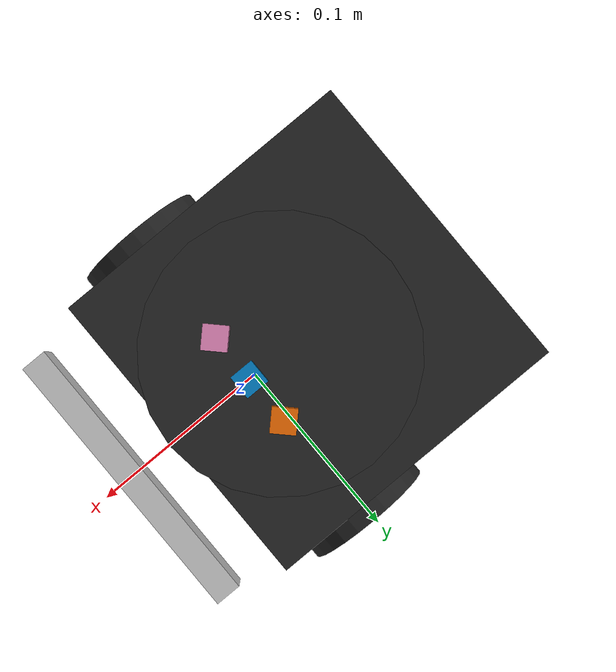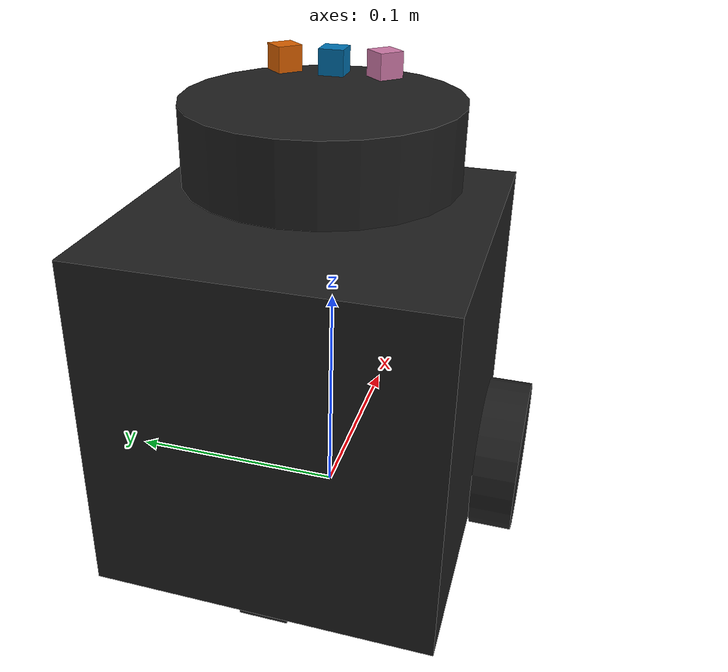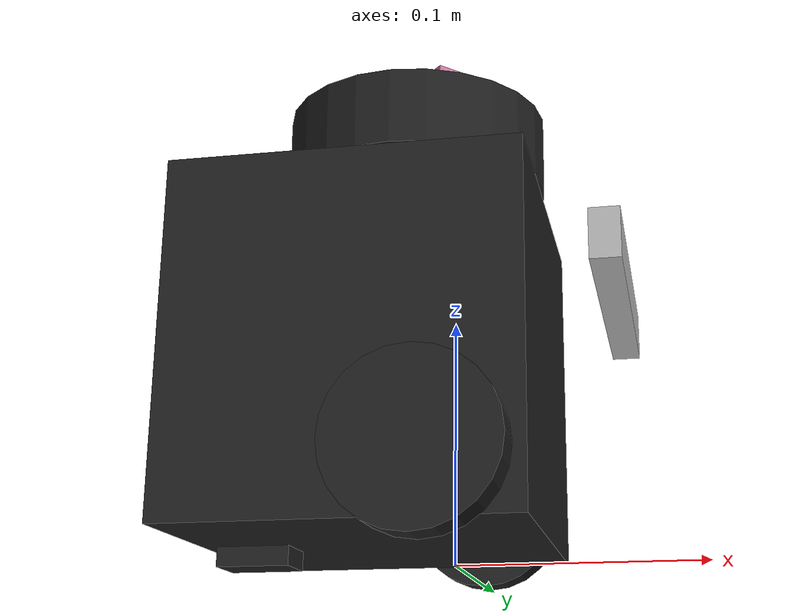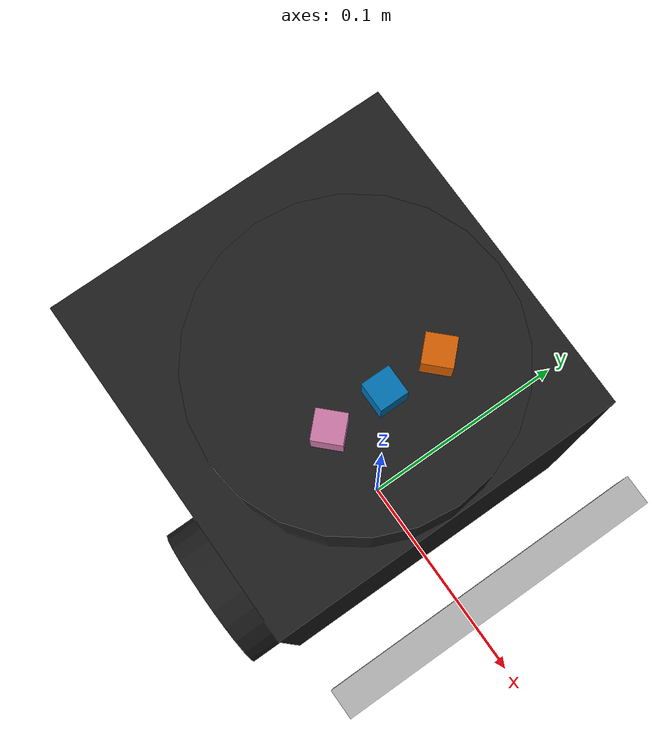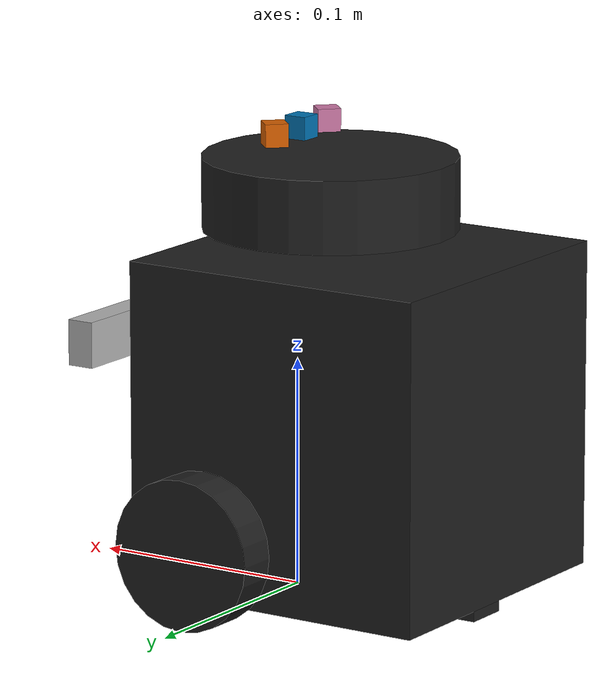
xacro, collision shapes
<?xml version="1.0"?>

<robot name="iris" xmlns:xacro="http://ros.org/wiki/xacro">
  <!-- Properties that can be assigned at build time as arguments.
  Is there a reason not to make all properties arguments?
  -->

  <!-- macros for gazebo plugins, sensors -->
  <xacro:include filename="$(find turtlebot3_description)/urdf/turtlebot3_burger.urdf.xacro" />

  <xacro:include filename="$(find turtlebot3_ultrasonic_demo_description)/urdf/ultrasonic_sensor.urdf.xacro" />

  <xacro:ultrasonic_sensor name="ultranic_sensor1"/>
  <xacro:ultrasonic_sensor name="ultranic_sensor2"/>
  <xacro:ultrasonic_sensor name="ultranic_sensor3"/>

  <joint name="ultrasonic_joint1" type="fixed">
    <origin xyz="0.03 0 0.02" rpy="0 0 0" />
    <parent link="base_scan" />
    <child link="ultranic_sensor1" />
  </joint>

  <joint name="ultrasonic_joint2" type="fixed">
    <origin xyz="0.03 0.02 0.02" rpy="0 0 0.7854" />
    <parent link="base_scan" />
    <child link="ultranic_sensor2" />
  </joint>

  <joint name="ultrasonic_joint3" type="fixed">
    <origin xyz="0.03 -0.02 0.02" rpy="0 0 -0.7854" />
    <parent link="base_scan" />
    <child link="ultranic_sensor3" />
  </joint>

</robot>

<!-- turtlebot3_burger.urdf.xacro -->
<robot name="turtlebot3_burger" xmlns:xacro="http://ros.org/wiki/xacro">
  <xacro:include filename="$(find turtlebot3_description)/urdf/common_properties.xacro"/>
  <xacro:include filename="$(find turtlebot3_description)/urdf/turtlebot3_burger.gazebo.xacro"/>
  <xacro:property name="r200_cam_rgb_px" value="0.005"/>
  <xacro:property name="r200_cam_rgb_py" value="0.018"/>
  <xacro:property name="r200_cam_rgb_pz" value="0.013"/>
  <xacro:property name="r200_cam_depth_offset" value="0.01"/>

  <link name="base_footprint"/>

  <joint name="base_joint" type="fixed">
    <parent link="base_footprint"/>
    <child link="base_link"/>
    <origin xyz="0.0 0.0 0.010" rpy="0 0 0"/>
  </joint>

  <link name="base_link">
    <visual>
      <origin xyz="-0.032 0 0.0" rpy="0 0 0"/>
      <geometry>
        <mesh filename="package://turtlebot3_description/meshes/bases/burger_base.stl" scale="0.001 0.001 0.001"/>
      </geometry>
      <material name="light_black"/>
    </visual>

    <collision>
      <origin xyz="-0.032 0 0.070" rpy="0 0 0"/>
      <geometry>
        <box size="0.140 0.140 0.143"/>
      </geometry>
    </collision>

    <inertial>
      <origin xyz="0 0 0" rpy="0 0 0"/>
      <mass value="8.2573504e-01"/>
      <inertia ixx="2.2124416e-03" ixy="-1.2294101e-05" ixz="3.4938785e-05"
               iyy="2.1193702e-03" iyz="-5.0120904e-06"
               izz="2.0064271e-03" />
    </inertial>
  </link>

  <joint name="wheel_left_joint" type="continuous">
    <parent link="base_link"/>
    <child link="wheel_left_link"/>
    <origin xyz="0.0 0.08 0.023" rpy="-1.57 0 0"/>
    <axis xyz="0 0 1"/>
  </joint>

  <link name="wheel_left_link">
    <visual>
      <origin xyz="0 0 0" rpy="1.57 0 0"/>
      <geometry>
        <mesh filename="package://turtlebot3_description/meshes/wheels/left_tire.stl" scale="0.001 0.001 0.001"/>
      </geometry>
      <material name="dark"/>
    </visual>

    <collision>
      <origin xyz="0 0 0" rpy="0 0 0"/>
      <geometry>
        <cylinder length="0.018" radius="0.033"/>
      </geometry>
    </collision>

    <inertial>
      <origin xyz="0 0 0" />
      <mass value="2.8498940e-02" />
      <inertia ixx="1.1175580e-05" ixy="-4.2369783e-11" ixz="-5.9381719e-09"
               iyy="1.1192413e-05" iyz="-1.4400107e-11"
               izz="2.0712558e-05" />
      </inertial>
  </link>

  <joint name="wheel_right_joint" type="continuous">
    <parent link="base_link"/>
    <child link="wheel_right_link"/>
    <origin xyz="0.0 -0.080 0.023" rpy="-1.57 0 0"/>
    <axis xyz="0 0 1"/>
  </joint>

  <link name="wheel_right_link">
    <visual>
      <origin xyz="0 0 0" rpy="1.57 0 0"/>
      <geometry>
        <mesh filename="package://turtlebot3_description/meshes/wheels/right_tire.stl" scale="0.001 0.001 0.001"/>
      </geometry>
      <material name="dark"/>
    </visual>

    <collision>
      <origin xyz="0 0 0" rpy="0 0 0"/>
      <geometry>
        <cylinder length="0.018" radius="0.033"/>
      </geometry>
    </collision>

    <inertial>
      <origin xyz="0 0 0" />
      <mass value="2.8498940e-02" />
      <inertia ixx="1.1175580e-05" ixy="-4.2369783e-11" ixz="-5.9381719e-09"
               iyy="1.1192413e-05" iyz="-1.4400107e-11"
               izz="2.0712558e-05" />
      </inertial>
  </link>

  <joint name="caster_back_joint" type="fixed">
    <parent link="base_link"/>
    <child link="caster_back_link"/>
    <origin xyz="-0.081 0 -0.004" rpy="-1.57 0 0"/>
  </joint>

  <link name="caster_back_link">
    <collision>
      <origin xyz="0 0.001 0" rpy="0 0 0"/>
      <geometry>
        <box size="0.030 0.009 0.020"/>
      </geometry>
    </collision>

    <inertial>
      <origin xyz="0 0 0" />
      <mass value="0.005" />
      <inertia ixx="0.001" ixy="0.0" ixz="0.0"
               iyy="0.001" iyz="0.0"
               izz="0.001" />
    </inertial>
  </link>

  <joint name="imu_joint" type="fixed">
    <parent link="base_link"/>
    <child link="imu_link"/>
    <origin xyz="-0.032 0 0.068" rpy="0 0 0"/>
  </joint>

  <link name="imu_link"/>

  <joint name="scan_joint" type="fixed">
    <parent link="base_link"/>
    <child link="base_scan"/>
    <origin xyz="-0.032 0 0.172" rpy="0 0 0"/>
  </joint>

  <link name="base_scan">
    <visual>
      <origin xyz="0 0 0.0" rpy="0 0 0"/>
      <geometry>
        <mesh filename="package://turtlebot3_description/meshes/sensors/lds.stl" scale="0.001 0.001 0.001"/>
      </geometry>
      <material name="dark"/>
    </visual>

    <collision>
      <origin xyz="0.015 0 -0.0065" rpy="0 0 0"/>
      <geometry>
        <cylinder length="0.0315" radius="0.055"/>
      </geometry>
    </collision>

    <inertial>
      <mass value="0.114" />
      <origin xyz="0 0 0" />
      <inertia ixx="0.001" ixy="0.0" ixz="0.0"
               iyy="0.001" iyz="0.0"
               izz="0.001" />
    </inertial>
</link>

  <joint name="camera_joint" type="fixed">
    <origin xyz="0.064 -0.065 0.094" rpy="0 0 0"/>
    <parent link="base_link"/>
    <child link="camera_link"/>
  </joint>

  <link name="camera_link">
    <visual>
     <origin xyz="0 0 0" rpy="1.57 0 1.57"/>
      <geometry>
       <mesh filename="package://turtlebot3_description/meshes/sensors/r200.dae" />
      </geometry>
    </visual>
    <collision>
      <origin xyz="0.003 0.065 0.007" rpy="0 0 0"/>
      <geometry>
        <box size="0.012 0.132 0.020"/>
      </geometry>
    </collision>

    <!-- This inertial field needs doesn't contain reliable data!! -->
  </link>

  <joint name="camera_rgb_joint" type="fixed">
    <origin xyz="${r200_cam_rgb_px} ${r200_cam_rgb_py} ${r200_cam_rgb_pz + 0.013}" rpy="0 0 0"/>
    <parent link="camera_link"/>
    <child link="camera_rgb_frame"/>
  </joint>
  <link name="camera_rgb_frame"/>

  <joint name="camera_rgb_optical_joint" type="fixed">
    <origin xyz="0 0 0" rpy="-1.57 0 -1.57"/>
    <parent link="camera_rgb_frame"/>
    <child link="camera_rgb_optical_frame"/>
  </joint>
  <link name="camera_rgb_optical_frame"/>

  <joint name="camera_depth_joint" type="fixed">
    <origin xyz="${r200_cam_rgb_px} ${r200_cam_rgb_py + r200_cam_depth_offset} ${r200_cam_rgb_pz}" rpy="0 0 0"/>
    <parent link="camera_link"/>
    <child link="camera_depth_frame"/>
  </joint>
  <link name="camera_depth_frame"/>

  <joint name="camera_depth_optical_joint" type="fixed">
    <origin xyz="0 0 0" rpy="-1.57 0 -1.57"/>
    <parent link="camera_depth_frame"/>
    <child link="camera_depth_optical_frame"/>
  </joint>
  <link name="camera_depth_optical_frame"/>

</robot>

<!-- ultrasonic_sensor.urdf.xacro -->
<robot name="ultrasonic_sensor" xmlns:xacro="http://ros.org/wiki/xacro">

  <xacro:macro name="ultrasonic_sensor"
    params="name">
      <link name="${name}">
        <visual>
          <origin xyz="0.0 0 0.0" rpy="0 0 0"/>
          <geometry>
            <box size="0.01 0.01 0.01"/>
          </geometry>
        </visual>

        <collision>
          <origin xyz="0.0 0 0.0" rpy="0 0 0"/>
          <geometry>
            <box size="0.01 0.01 0.01"/>
          </geometry>
        </collision>
      </link>

      <gazebo reference="${name}">
       <sensor type="ray" name="sonar">
         <pose>0.0 0 0 0 0 0</pose>
         <update_rate>5</update_rate>
         <visualize>true</visualize>
         <ray>
           <scan>
             <horizontal>
               <samples>5</samples>
               <resolution>1.0</resolution>
               <min_angle>-0.25</min_angle>
               <max_angle>0.25</max_angle>
             </horizontal>
             <vertical>
               <samples>5</samples>
               <resolution>1</resolution>
               <min_angle>-0.25</min_angle>
               <max_angle>0.25</max_angle>
             </vertical>
           </scan>
           <range>
             <min>0.012</min>
             <max>2.75</max>
             <resolution>0.01</resolution>
           </range>
         </ray>
         <plugin filename="libgazebo_ros_range.so" name="gazebo_ros_range">
           <gaussianNoise>0.005</gaussianNoise>
           <alwaysOn>true</alwaysOn>
           <updateRate>5</updateRate>
           <topicName>${name}</topicName>
           <frameName>${name}</frameName>
           <fov>0.5</fov>
           <radiation>ultrasound</radiation>
         </plugin>
       </sensor>
       <gravity>false</gravity>
       <self_collide>true</self_collide>
       <kinematic>false</kinematic>
      </gazebo>
  </xacro:macro>

</robot>
